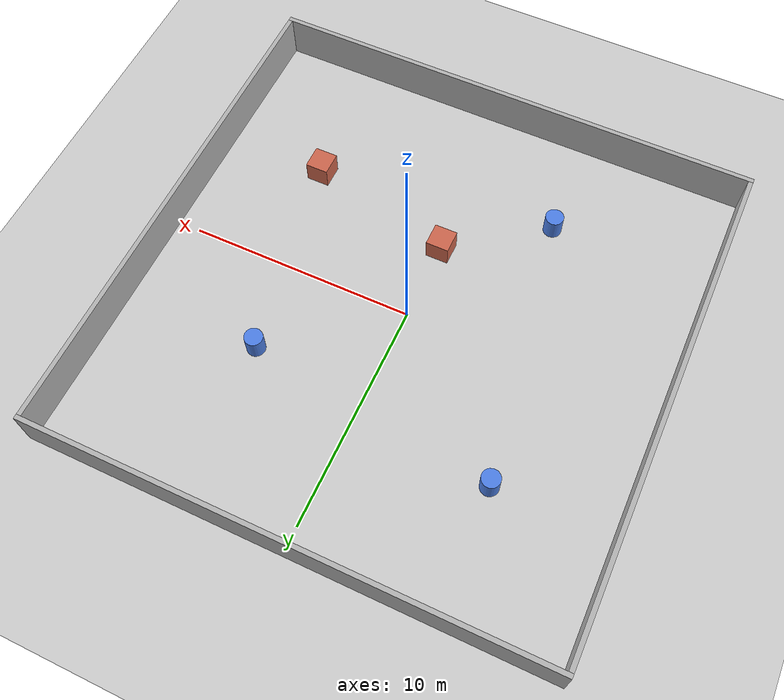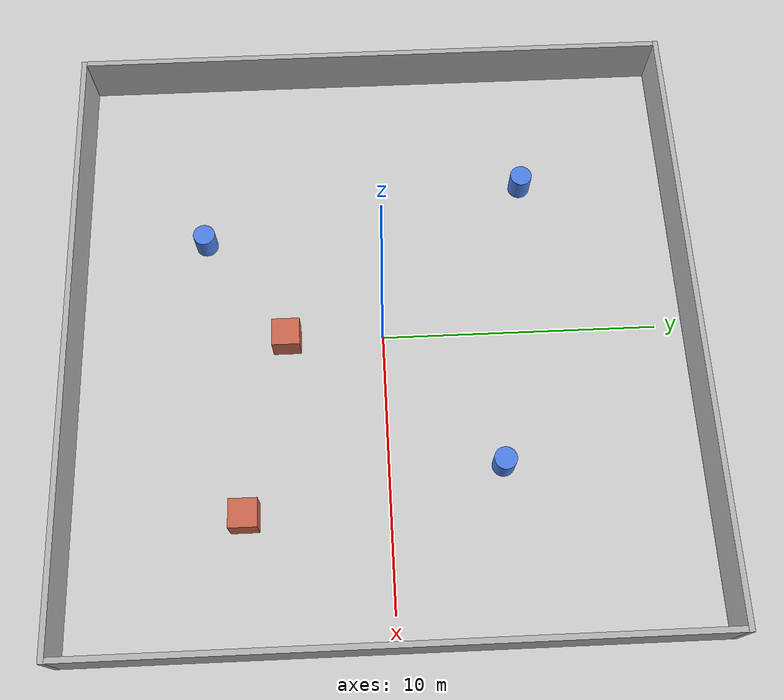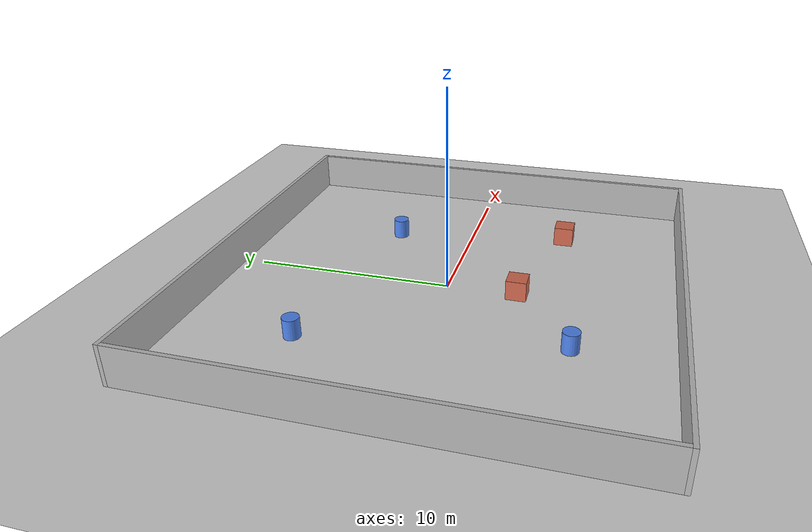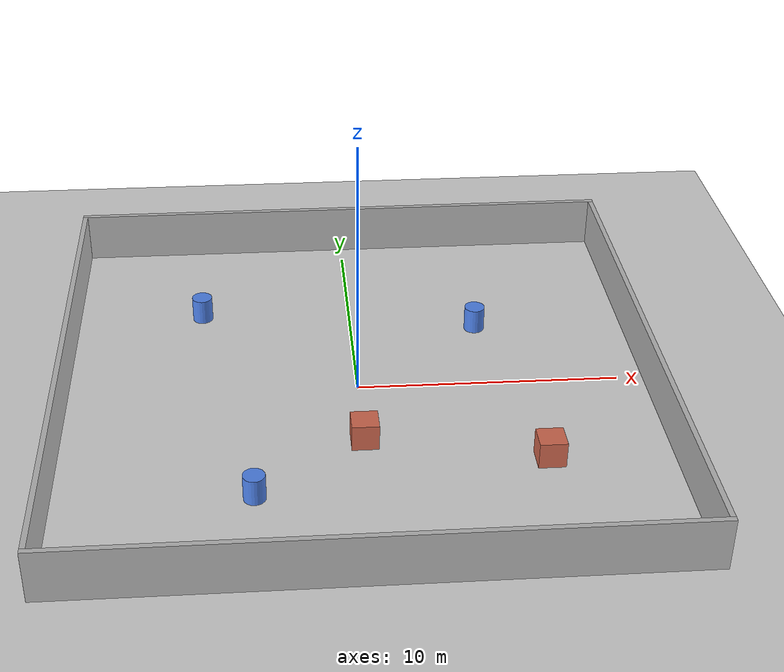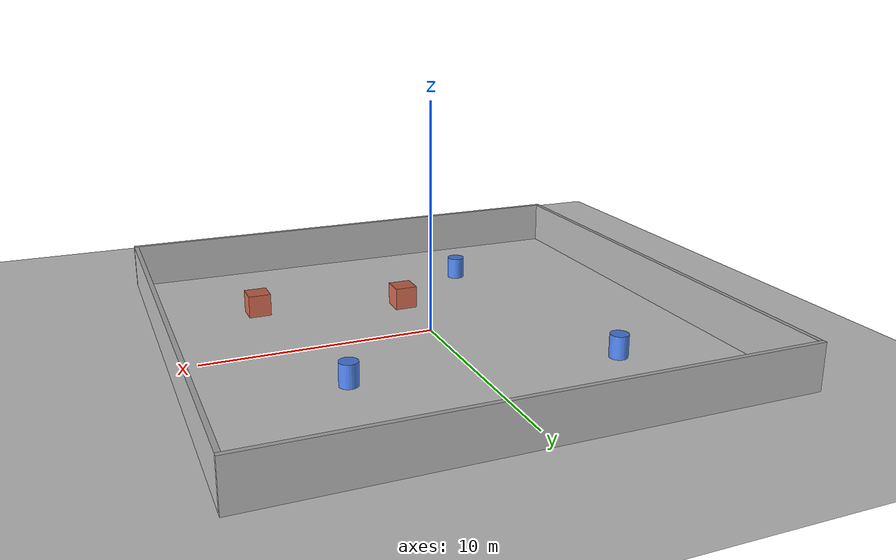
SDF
<?xml version="1.0" ?>
<sdf version="1.6">
  <world name="empty_lcp">

    <include><uri>model://sun</uri></include>
    <include><uri>model://ground_plane</uri></include>

    <physics type="ode">
      <real_time_update_rate>1000</real_time_update_rate>
      <max_step_size>0.001</max_step_size>
      <real_time_factor>1</real_time_factor>
    </physics>

    <scene>
      <ambient>0.5 0.5 0.5 1</ambient>
      <background>0.7 0.7 0.7 1</background>
      <shadows>false</shadows>
    </scene>

    <!-- ======================== WALLS ========================
         22x22 m enclosed area, walls 0.2 m thick, 2 m tall.
         Wall centres sit at ±11.1 m so the inside face is at ±11 m. -->

    <model name="wall_north">
      <static>true</static>
      <pose>0 11.1 1 0 0 0</pose>
      <link name="link">
        <collision name="c"><geometry><box><size>22.4 0.2 2.0</size></box></geometry></collision>
        <visual name="v"><geometry><box><size>22.4 0.2 2.0</size></box></geometry>
          <material><ambient>0.6 0.6 0.6 1</ambient><diffuse>0.7 0.7 0.7 1</diffuse></material></visual>
      </link>
    </model>

    <model name="wall_south">
      <static>true</static>
      <pose>0 -11.1 1 0 0 0</pose>
      <link name="link">
        <collision name="c"><geometry><box><size>22.4 0.2 2.0</size></box></geometry></collision>
        <visual name="v"><geometry><box><size>22.4 0.2 2.0</size></box></geometry>
          <material><ambient>0.6 0.6 0.6 1</ambient><diffuse>0.7 0.7 0.7 1</diffuse></material></visual>
      </link>
    </model>

    <model name="wall_east">
      <static>true</static>
      <pose>11.1 0 1 0 0 0</pose>
      <link name="link">
        <collision name="c"><geometry><box><size>0.2 22.0 2.0</size></box></geometry></collision>
        <visual name="v"><geometry><box><size>0.2 22.0 2.0</size></box></geometry>
          <material><ambient>0.6 0.6 0.6 1</ambient><diffuse>0.7 0.7 0.7 1</diffuse></material></visual>
      </link>
    </model>

    <model name="wall_west">
      <static>true</static>
      <pose>-11.1 0 1 0 0 0</pose>
      <link name="link">
        <collision name="c"><geometry><box><size>0.2 22.0 2.0</size></box></geometry></collision>
        <visual name="v"><geometry><box><size>0.2 22.0 2.0</size></box></geometry>
          <material><ambient>0.6 0.6 0.6 1</ambient><diffuse>0.7 0.7 0.7 1</diffuse></material></visual>
      </link>
    </model>

    <model name="cyl_1">
      <static>true</static>
      <pose>5.0 4.0 0.5 0 0 0</pose>
      <link name="link">
        <collision name="c"><geometry><cylinder><radius>0.4</radius><length>1.0</length></cylinder></geometry></collision>
        <visual name="v"><geometry><cylinder><radius>0.4</radius><length>1.0</length></cylinder></geometry>
          <material><ambient>0.2 0.4 0.8 1</ambient><diffuse>0.3 0.5 0.9 1</diffuse></material></visual>
      </link>
    </model>

    <model name="cyl_2">
      <static>true</static>
      <pose>-6.0 5.5 0.5 0 0 0</pose>
      <link name="link">
        <collision name="c"><geometry><cylinder><radius>0.4</radius><length>1.0</length></cylinder></geometry></collision>
        <visual name="v"><geometry><cylinder><radius>0.4</radius><length>1.0</length></cylinder></geometry>
          <material><ambient>0.2 0.4 0.8 1</ambient><diffuse>0.3 0.5 0.9 1</diffuse></material></visual>
      </link>
    </model>

    <model name="cyl_3">
      <static>true</static>
      <pose>-4.0 -6.5 0.5 0 0 0</pose>
      <link name="link">
        <collision name="c"><geometry><cylinder><radius>0.4</radius><length>1.0</length></cylinder></geometry></collision>
        <visual name="v"><geometry><cylinder><radius>0.4</radius><length>1.0</length></cylinder></geometry>
          <material><ambient>0.2 0.4 0.8 1</ambient><diffuse>0.3 0.5 0.9 1</diffuse></material></visual>
      </link>
    </model>

    <model name="box_1">
      <static>true</static>
      <pose>6.5 -5.0 0.5 0 0 0</pose>
      <link name="link">
        <collision name="c"><geometry><box><size>1.0 1.0 1.0</size></box></geometry></collision>
        <visual name="v"><geometry><box><size>1.0 1.0 1.0</size></box></geometry>
          <material><ambient>0.7 0.3 0.2 1</ambient><diffuse>0.8 0.4 0.3 1</diffuse></material></visual>
      </link>
    </model>

    <model name="box_2">
      <static>true</static>
      <pose>0.0 -3.5 0.5 0 0 0</pose>
      <link name="link">
        <collision name="c"><geometry><box><size>1.0 1.0 1.0</size></box></geometry></collision>
        <visual name="v"><geometry><box><size>1.0 1.0 1.0</size></box></geometry>
          <material><ambient>0.7 0.3 0.2 1</ambient><diffuse>0.8 0.4 0.3 1</diffuse></material></visual>
      </link>
    </model>

  </world>
</sdf>
